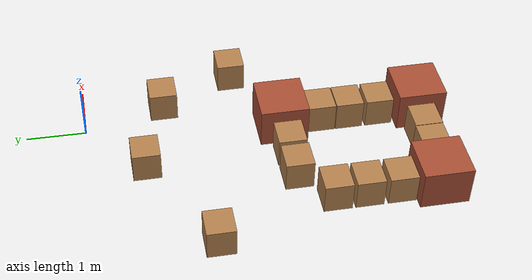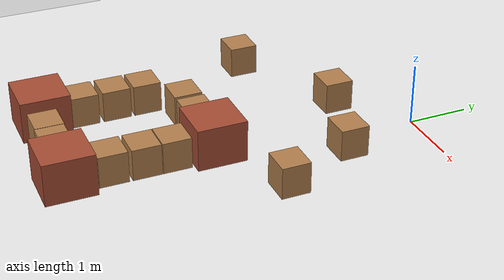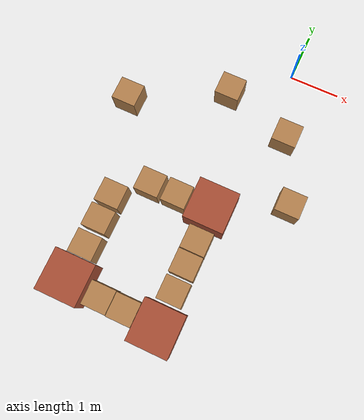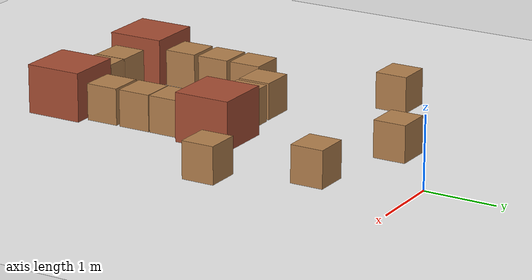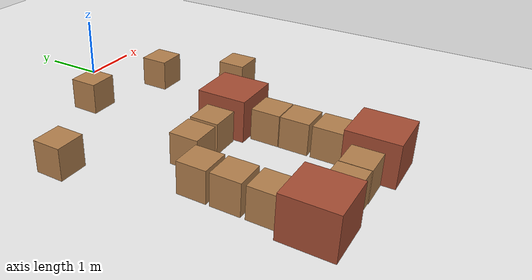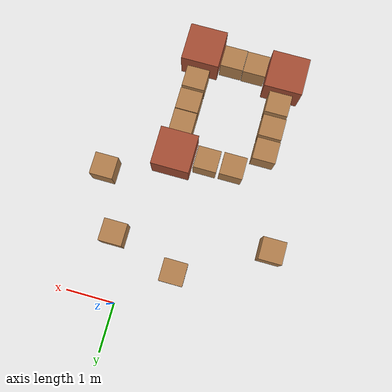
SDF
<sdf version="1.6">
 <world name="default">
  <light name="sun" type="directional">
   <pose>0 0 10 0 -0 0</pose>
   <diffuse>0.8 0.8 0.8 1</diffuse>
   <specular>0.1 0.1 0.1 1</specular>
   <attenuation>
    <range>1000</range>
    <constant>0.9</constant>
    <linear>0.01</linear>
    <quadratic>0.001</quadratic>
   </attenuation>
   <direction>-0.5 0.5 -1</direction>
  </light>
  <model name="ground_plane">
   <static>1</static>
   <link name="link">
    <collision name="collision">
     <geometry><plane><normal>0 0 1</normal><size>100 100</size></plane></geometry>
     <surface><friction><ode><mu>100</mu><mu2>50</mu2></ode></friction></surface>
    </collision>
    <visual name="visual">
     <cast_shadows>0</cast_shadows>
     <geometry><plane><normal>0 0 1</normal><size>100 100</size></plane></geometry>
     <material>
      <script><uri>file://media/materials/scripts/gazebo.material</uri><name>Gazebo/White</name></script>
     </material>
    </visual>
   </link>
  </model>
  <gravity>0 0 -9.8</gravity>
  <magnetic_field>6e-06 2.3e-05 -4.2e-05</magnetic_field>
  <atmosphere type="adiabatic"/>
  <physics name="default_physics" default="0" type="ode">
   <max_step_size>0.005</max_step_size>
   <real_time_factor>1</real_time_factor>
   <real_time_update_rate>1000</real_time_update_rate>
  </physics>
  <scene><ambient>0.4 0.4 0.4 1</ambient><background>0.7 0.7 0.7 1</background><shadows>1</shadows></scene>
  <spherical_coordinates>
   <surface_model>EARTH_WGS84</surface_model>
   <latitude_deg>0</latitude_deg>
   <longitude_deg>0</longitude_deg>
   <elevation>0</elevation>
   <heading_deg>0</heading_deg>
  </spherical_coordinates>
  <model name="HeavyBox_2">
   <link name="link">
    <inertial>
     <mass>2</mass>
     <inertia>
      <ixx>0.0402452</ixx>
      <ixy>0</ixy>
      <ixz>0</ixz>
      <iyy>0.0399236</iyy>
      <iyz>0</iyz>
      <izz>0.0461707</izz>
     </inertia>
    </inertial>
    <visual name="visual">
     <geometry><box><size>0.79482 0.800386 0.684447</size></box></geometry>
     <material>
      <script><name>Gazebo/Bricks</name><uri>file://media/materials/scripts/gazebo.material</uri></script>
      <ambient>0.3 0.3 0.3 1</ambient>
      <diffuse>0.7 0.7 0.7 1</diffuse>
      <specular>0.01 0.01 0.01 1</specular>
      <emissive>0 0 0 1</emissive>
     </material>
    </visual>
    <collision name="collision">
     <geometry><box><size>0.79482 0.800386 0.684447</size></box></geometry>
     <surface>
      <friction>
       <ode><mu>1</mu><mu2>1</mu2><fdir1>0 0 0</fdir1><slip1>0</slip1><slip2>0</slip2></ode>
       <torsional>
        <coefficient>1</coefficient>
        <patch_radius>0</patch_radius>
        <surface_radius>0</surface_radius>
        <use_patch_radius>1</use_patch_radius>
        <ode><slip>0</slip></ode>
       </torsional>
      </friction>
      <bounce><restitution_coefficient>0</restitution_coefficient><threshold>1e+06</threshold></bounce>
      <contact>
       <collide_without_contact>0</collide_without_contact>
       <collide_without_contact_bitmask>1</collide_without_contact_bitmask>
       <collide_bitmask>1</collide_bitmask>
       <ode>
        <soft_cfm>0</soft_cfm>
        <soft_erp>0.2</soft_erp>
        <kp>1e+13</kp>
        <kd>1</kd>
        <max_vel>0.01</max_vel>
        <min_depth>0</min_depth>
       </ode>
       <bullet>
        <split_impulse>1</split_impulse>
        <split_impulse_penetration_threshold>-0.01</split_impulse_penetration_threshold>
        <soft_cfm>0</soft_cfm>
        <soft_erp>0.2</soft_erp>
        <kp>1e+13</kp>
        <kd>1</kd>
       </bullet>
      </contact>
     </surface>
    </collision>
   </link>
   <static>0</static>
   <pose>-2.17237 -5.47315 0.342224 0 -1e-06 -1e-06</pose>
  </model>
  <model name="Box_0">
   <link name="link">
    <inertial>
     <mass>0.01</mass>
     <inertia>
      <ixx>0.00455697</ixx>
      <ixy>0</ixy>
      <ixz>0</ixz>
      <iyy>0.00475558</iyy>
      <iyz>0</iyz>
      <izz>0.00426137</izz>
     </inertia>
    </inertial>
    <visual name="visual">
     <geometry><box><size>0.483208 0.461193 0.514245</size></box></geometry>
     <material>
      <script><name>Gazebo/WoodFloor</name><uri>file://media/materials/scripts/gazebo.material</uri></script>
      <ambient>0.3 0.3 0.3 1</ambient>
      <diffuse>0.7 0.7 0.7 1</diffuse>
      <specular>0.01 0.01 0.01 1</specular>
      <emissive>0 0 0 1</emissive>
     </material>
    </visual>
    <collision name="collision">
     <geometry><box><size>0.483208 0.461193 0.514245</size></box></geometry>
     <surface>
      <friction>
       <ode><mu>1</mu><mu2>1</mu2><fdir1>0 0 0</fdir1><slip1>0</slip1><slip2>0</slip2></ode>
       <torsional>
        <coefficient>1</coefficient>
        <patch_radius>0</patch_radius>
        <surface_radius>0</surface_radius>
        <use_patch_radius>1</use_patch_radius>
        <ode><slip>0</slip></ode>
       </torsional>
      </friction>
      <bounce><restitution_coefficient>0</restitution_coefficient><threshold>1e+06</threshold></bounce>
      <contact>
       <collide_without_contact>0</collide_without_contact>
       <collide_without_contact_bitmask>1</collide_without_contact_bitmask>
       <collide_bitmask>1</collide_bitmask>
       <ode>
        <soft_cfm>0</soft_cfm>
        <soft_erp>0.2</soft_erp>
        <kp>1e+13</kp>
        <kd>1</kd>
        <max_vel>0.01</max_vel>
        <min_depth>0</min_depth>
       </ode>
       <bullet>
        <split_impulse>1</split_impulse>
        <split_impulse_penetration_threshold>-0.01</split_impulse_penetration_threshold>
        <soft_cfm>0</soft_cfm>
        <soft_erp>0.2</soft_erp>
        <kp>1e+13</kp>
        <kd>1</kd>
       </bullet>
      </contact>
     </surface>
    </collision>
   </link>
   <static>0</static>
   <pose>-2.16582 -4.82716 0.257122 0 -0 0</pose>
  </model>
  <model name="Box_1">
   <link name="link">
    <inertial>
     <mass>0.01</mass>
     <inertia>
      <ixx>0.00455697</ixx>
      <ixy>0</ixy>
      <ixz>0</ixz>
      <iyy>0.00475558</iyy>
      <iyz>0</iyz>
      <izz>0.00426137</izz>
     </inertia>
    </inertial>
    <visual name="visual">
     <geometry><box><size>0.483208 0.461193 0.514245</size></box></geometry>
     <material>
      <script><name>Gazebo/WoodFloor</name><uri>file://media/materials/scripts/gazebo.material</uri></script>
      <ambient>0.3 0.3 0.3 1</ambient>
      <diffuse>0.7 0.7 0.7 1</diffuse>
      <specular>0.01 0.01 0.01 1</specular>
      <emissive>0 0 0 1</emissive>
     </material>
    </visual>
    <collision name="collision">
     <geometry><box><size>0.483208 0.461193 0.514245</size></box></geometry>
     <surface>
      <friction>
       <ode><mu>1</mu><mu2>1</mu2><fdir1>0 0 0</fdir1><slip1>0</slip1><slip2>0</slip2></ode>
       <torsional>
        <coefficient>1</coefficient>
        <patch_radius>0</patch_radius>
        <surface_radius>0</surface_radius>
        <use_patch_radius>1</use_patch_radius>
        <ode><slip>0</slip></ode>
       </torsional>
      </friction>
      <bounce><restitution_coefficient>0</restitution_coefficient><threshold>1e+06</threshold></bounce>
      <contact>
       <collide_without_contact>0</collide_without_contact>
       <collide_without_contact_bitmask>1</collide_without_contact_bitmask>
       <collide_bitmask>1</collide_bitmask>
       <ode>
        <soft_cfm>0</soft_cfm>
        <soft_erp>0.2</soft_erp>
        <kp>1e+13</kp>
        <kd>1</kd>
        <max_vel>0.01</max_vel>
        <min_depth>0</min_depth>
       </ode>
       <bullet>
        <split_impulse>1</split_impulse>
        <split_impulse_penetration_threshold>-0.01</split_impulse_penetration_threshold>
        <soft_cfm>0</soft_cfm>
        <soft_erp>0.2</soft_erp>
        <kp>1e+13</kp>
        <kd>1</kd>
       </bullet>
      </contact>
     </surface>
    </collision>
   </link>
   <static>0</static>
   <pose>-2.16483 -4.29877 0.257122 0 -0 0</pose>
  </model>
  <model name="Box_2">
   <link name="link">
    <inertial>
     <mass>0.01</mass>
     <inertia>
      <ixx>0.00455697</ixx>
      <ixy>0</ixy>
      <ixz>0</ixz>
      <iyy>0.00475558</iyy>
      <iyz>0</iyz>
      <izz>0.00426137</izz>
     </inertia>
    </inertial>
    <visual name="visual">
     <geometry><box><size>0.483208 0.461193 0.514245</size></box></geometry>
     <material>
      <script><name>Gazebo/WoodFloor</name><uri>file://media/materials/scripts/gazebo.material</uri></script>
      <ambient>0.3 0.3 0.3 1</ambient>
      <diffuse>0.7 0.7 0.7 1</diffuse>
      <specular>0.01 0.01 0.01 1</specular>
      <emissive>0 0 0 1</emissive>
     </material>
    </visual>
    <collision name="collision">
     <geometry><box><size>0.483208 0.461193 0.514245</size></box></geometry>
     <surface>
      <friction>
       <ode><mu>1</mu><mu2>1</mu2><fdir1>0 0 0</fdir1><slip1>0</slip1><slip2>0</slip2></ode>
       <torsional>
        <coefficient>1</coefficient>
        <patch_radius>0</patch_radius>
        <surface_radius>0</surface_radius>
        <use_patch_radius>1</use_patch_radius>
        <ode><slip>0</slip></ode>
       </torsional>
      </friction>
      <bounce><restitution_coefficient>0</restitution_coefficient><threshold>1e+06</threshold></bounce>
      <contact>
       <collide_without_contact>0</collide_without_contact>
       <collide_without_contact_bitmask>1</collide_without_contact_bitmask>
       <collide_bitmask>1</collide_bitmask>
       <ode>
        <soft_cfm>0</soft_cfm>
        <soft_erp>0.2</soft_erp>
        <kp>1e+13</kp>
        <kd>1</kd>
        <max_vel>0.01</max_vel>
        <min_depth>0</min_depth>
       </ode>
       <bullet>
        <split_impulse>1</split_impulse>
        <split_impulse_penetration_threshold>-0.01</split_impulse_penetration_threshold>
        <soft_cfm>0</soft_cfm>
        <soft_erp>0.2</soft_erp>
        <kp>1e+13</kp>
        <kd>1</kd>
       </bullet>
      </contact>
     </surface>
    </collision>
   </link>
   <static>0</static>
   <pose>-2.1639 -3.78542 0.257122 0 -0 0</pose>
  </model>
  <model name="Box_4">
   <link name="link">
    <inertial>
     <mass>0.01</mass>
     <inertia>
      <ixx>0.00455697</ixx>
      <ixy>0</ixy>
      <ixz>0</ixz>
      <iyy>0.00475558</iyy>
      <iyz>0</iyz>
      <izz>0.00426137</izz>
     </inertia>
    </inertial>
    <visual name="visual">
     <geometry><box><size>0.483208 0.461193 0.514245</size></box></geometry>
     <material>
      <script><name>Gazebo/WoodFloor</name><uri>file://media/materials/scripts/gazebo.material</uri></script>
      <ambient>0.3 0.3 0.3 1</ambient>
      <diffuse>0.7 0.7 0.7 1</diffuse>
      <specular>0.01 0.01 0.01 1</specular>
      <emissive>0 0 0 1</emissive>
     </material>
    </visual>
    <collision name="collision">
     <geometry><box><size>0.483208 0.461193 0.514245</size></box></geometry>
     <surface>
      <friction>
       <ode><mu>1</mu><mu2>1</mu2><fdir1>0 0 0</fdir1><slip1>0</slip1><slip2>0</slip2></ode>
       <torsional>
        <coefficient>1</coefficient>
        <patch_radius>0</patch_radius>
        <surface_radius>0</surface_radius>
        <use_patch_radius>1</use_patch_radius>
        <ode><slip>0</slip></ode>
       </torsional>
      </friction>
      <bounce><restitution_coefficient>0</restitution_coefficient><threshold>1e+06</threshold></bounce>
      <contact>
       <collide_without_contact>0</collide_without_contact>
       <collide_without_contact_bitmask>1</collide_without_contact_bitmask>
       <collide_bitmask>1</collide_bitmask>
       <ode>
        <soft_cfm>0</soft_cfm>
        <soft_erp>0.2</soft_erp>
        <kp>1e+13</kp>
        <kd>1</kd>
        <max_vel>0.01</max_vel>
        <min_depth>0</min_depth>
       </ode>
       <bullet>
        <split_impulse>1</split_impulse>
        <split_impulse_penetration_threshold>-0.01</split_impulse_penetration_threshold>
        <soft_cfm>0</soft_cfm>
        <soft_erp>0.2</soft_erp>
        <kp>1e+13</kp>
        <kd>1</kd>
       </bullet>
      </contact>
     </surface>
    </collision>
   </link>
   <static>0</static>
   <pose>-1.51364 -5.55277 0.257122 0 -0 0</pose>
  </model>
  <model name="Box_5">
   <link name="link">
    <inertial>
     <mass>0.01</mass>
     <inertia>
      <ixx>0.00455697</ixx>
      <ixy>0</ixy>
      <ixz>0</ixz>
      <iyy>0.00475558</iyy>
      <iyz>0</iyz>
      <izz>0.00426137</izz>
     </inertia>
    </inertial>
    <visual name="visual">
     <geometry><box><size>0.483208 0.461193 0.514245</size></box></geometry>
     <material>
      <script><name>Gazebo/WoodFloor</name><uri>file://media/materials/scripts/gazebo.material</uri></script>
      <ambient>0.3 0.3 0.3 1</ambient>
      <diffuse>0.7 0.7 0.7 1</diffuse>
      <specular>0.01 0.01 0.01 1</specular>
      <emissive>0 0 0 1</emissive>
     </material>
    </visual>
    <collision name="collision">
     <geometry><box><size>0.483208 0.461193 0.514245</size></box></geometry>
     <surface>
      <friction>
       <ode><mu>1</mu><mu2>1</mu2><fdir1>0 0 0</fdir1><slip1>0</slip1><slip2>0</slip2></ode>
       <torsional>
        <coefficient>1</coefficient>
        <patch_radius>0</patch_radius>
        <surface_radius>0</surface_radius>
        <use_patch_radius>1</use_patch_radius>
        <ode><slip>0</slip></ode>
       </torsional>
      </friction>
      <bounce><restitution_coefficient>0</restitution_coefficient><threshold>1e+06</threshold></bounce>
      <contact>
       <collide_without_contact>0</collide_without_contact>
       <collide_without_contact_bitmask>1</collide_without_contact_bitmask>
       <collide_bitmask>1</collide_bitmask>
       <ode>
        <soft_cfm>0</soft_cfm>
        <soft_erp>0.2</soft_erp>
        <kp>1e+13</kp>
        <kd>1</kd>
        <max_vel>0.01</max_vel>
        <min_depth>0</min_depth>
       </ode>
       <bullet>
        <split_impulse>1</split_impulse>
        <split_impulse_penetration_threshold>-0.01</split_impulse_penetration_threshold>
        <soft_cfm>0</soft_cfm>
        <soft_erp>0.2</soft_erp>
        <kp>1e+13</kp>
        <kd>1</kd>
       </bullet>
      </contact>
     </surface>
    </collision>
   </link>
   <static>0</static>
   <pose>-1.02223 -5.5618 0.257122 0 -0 0</pose>
  </model>
  <model name="HeavyBox_3">
   <link name="link">
    <inertial>
     <mass>2</mass>
     <inertia>
      <ixx>0.0402452</ixx>
      <ixy>0</ixy>
      <ixz>0</ixz>
      <iyy>0.0399236</iyy>
      <iyz>0</iyz>
      <izz>0.0461707</izz>
     </inertia>
    </inertial>
    <visual name="visual">
     <geometry><box><size>0.79482 0.800386 0.684447</size></box></geometry>
     <material>
      <script><name>Gazebo/Bricks</name><uri>file://media/materials/scripts/gazebo.material</uri></script>
      <ambient>0.3 0.3 0.3 1</ambient>
      <diffuse>0.7 0.7 0.7 1</diffuse>
      <specular>0.01 0.01 0.01 1</specular>
      <emissive>0 0 0 1</emissive>
     </material>
    </visual>
    <collision name="collision">
     <geometry><box><size>0.79482 0.800386 0.684447</size></box></geometry>
     <surface>
      <friction>
       <ode><mu>1</mu><mu2>1</mu2><fdir1>0 0 0</fdir1><slip1>0</slip1><slip2>0</slip2></ode>
       <torsional>
        <coefficient>1</coefficient>
        <patch_radius>0</patch_radius>
        <surface_radius>0</surface_radius>
        <use_patch_radius>1</use_patch_radius>
        <ode><slip>0</slip></ode>
       </torsional>
      </friction>
      <bounce><restitution_coefficient>0</restitution_coefficient><threshold>1e+06</threshold></bounce>
      <contact>
       <collide_without_contact>0</collide_without_contact>
       <collide_without_contact_bitmask>1</collide_without_contact_bitmask>
       <collide_bitmask>1</collide_bitmask>
       <ode>
        <soft_cfm>0</soft_cfm>
        <soft_erp>0.2</soft_erp>
        <kp>1e+13</kp>
        <kd>1</kd>
        <max_vel>0.01</max_vel>
        <min_depth>0</min_depth>
       </ode>
       <bullet>
        <split_impulse>1</split_impulse>
        <split_impulse_penetration_threshold>-0.01</split_impulse_penetration_threshold>
        <soft_cfm>0</soft_cfm>
        <soft_erp>0.2</soft_erp>
        <kp>1e+13</kp>
        <kd>1</kd>
       </bullet>
      </contact>
     </surface>
    </collision>
   </link>
   <static>0</static>
   <pose>-0.358018 -5.59628 0.342224 0 -0 2.3e-05</pose>
  </model>
  <model name="Box_6">
   <link name="link">
    <inertial>
     <mass>0.01</mass>
     <inertia>
      <ixx>0.00455697</ixx>
      <ixy>0</ixy>
      <ixz>0</ixz>
      <iyy>0.00475558</iyy>
      <iyz>0</iyz>
      <izz>0.00426137</izz>
     </inertia>
    </inertial>
    <visual name="visual">
     <geometry><box><size>0.483208 0.461193 0.514245</size></box></geometry>
     <material>
      <script><name>Gazebo/WoodFloor</name><uri>file://media/materials/scripts/gazebo.material</uri></script>
      <ambient>0.3 0.3 0.3 1</ambient>
      <diffuse>0.7 0.7 0.7 1</diffuse>
      <specular>0.01 0.01 0.01 1</specular>
      <emissive>0 0 0 1</emissive>
     </material>
    </visual>
    <collision name="collision">
     <geometry><box><size>0.483208 0.461193 0.514245</size></box></geometry>
     <surface>
      <friction>
       <ode><mu>1</mu><mu2>1</mu2><fdir1>0 0 0</fdir1><slip1>0</slip1><slip2>0</slip2></ode>
       <torsional>
        <coefficient>1</coefficient>
        <patch_radius>0</patch_radius>
        <surface_radius>0</surface_radius>
        <use_patch_radius>1</use_patch_radius>
        <ode><slip>0</slip></ode>
       </torsional>
      </friction>
      <bounce><restitution_coefficient>0</restitution_coefficient><threshold>1e+06</threshold></bounce>
      <contact>
       <collide_without_contact>0</collide_without_contact>
       <collide_without_contact_bitmask>1</collide_without_contact_bitmask>
       <collide_bitmask>1</collide_bitmask>
       <ode>
        <soft_cfm>0</soft_cfm>
        <soft_erp>0.2</soft_erp>
        <kp>1e+13</kp>
        <kd>1</kd>
        <max_vel>0.01</max_vel>
        <min_depth>0</min_depth>
       </ode>
       <bullet>
        <split_impulse>1</split_impulse>
        <split_impulse_penetration_threshold>-0.01</split_impulse_penetration_threshold>
        <soft_cfm>0</soft_cfm>
        <soft_erp>0.2</soft_erp>
        <kp>1e+13</kp>
        <kd>1</kd>
       </bullet>
      </contact>
     </surface>
    </collision>
   </link>
   <static>0</static>
   <pose>-0.356508 -4.91552 0.257122 0 -0 0</pose>
  </model>
  <model name="Box_7">
   <link name="link">
    <inertial>
     <mass>0.01</mass>
     <inertia>
      <ixx>0.00455697</ixx>
      <ixy>0</ixy>
      <ixz>0</ixz>
      <iyy>0.00475558</iyy>
      <iyz>0</iyz>
      <izz>0.00426137</izz>
     </inertia>
    </inertial>
    <visual name="visual">
     <geometry><box><size>0.483208 0.461193 0.514245</size></box></geometry>
     <material>
      <script><name>Gazebo/WoodFloor</name><uri>file://media/materials/scripts/gazebo.material</uri></script>
      <ambient>0.3 0.3 0.3 1</ambient>
      <diffuse>0.7 0.7 0.7 1</diffuse>
      <specular>0.01 0.01 0.01 1</specular>
      <emissive>0 0 0 1</emissive>
     </material>
    </visual>
    <collision name="collision">
     <geometry><box><size>0.483208 0.461193 0.514245</size></box></geometry>
     <surface>
      <friction>
       <ode><mu>1</mu><mu2>1</mu2><fdir1>0 0 0</fdir1><slip1>0</slip1><slip2>0</slip2></ode>
       <torsional>
        <coefficient>1</coefficient>
        <patch_radius>0</patch_radius>
        <surface_radius>0</surface_radius>
        <use_patch_radius>1</use_patch_radius>
        <ode><slip>0</slip></ode>
       </torsional>
      </friction>
      <bounce><restitution_coefficient>0</restitution_coefficient><threshold>1e+06</threshold></bounce>
      <contact>
       <collide_without_contact>0</collide_without_contact>
       <collide_without_contact_bitmask>1</collide_without_contact_bitmask>
       <collide_bitmask>1</collide_bitmask>
       <ode>
        <soft_cfm>0</soft_cfm>
        <soft_erp>0.2</soft_erp>
        <kp>1e+13</kp>
        <kd>1</kd>
        <max_vel>0.01</max_vel>
        <min_depth>0</min_depth>
       </ode>
       <bullet>
        <split_impulse>1</split_impulse>
        <split_impulse_penetration_threshold>-0.01</split_impulse_penetration_threshold>
        <soft_cfm>0</soft_cfm>
        <soft_erp>0.2</soft_erp>
        <kp>1e+13</kp>
        <kd>1</kd>
       </bullet>
      </contact>
     </surface>
    </collision>
   </link>
   <static>0</static>
   <pose>-0.355355 -4.4028 0.257122 0 -0 0</pose>
  </model>
  <model name="Box_8">
   <link name="link">
    <inertial>
     <mass>0.01</mass>
     <inertia>
      <ixx>0.00455697</ixx>
      <ixy>0</ixy>
      <ixz>0</ixz>
      <iyy>0.00475558</iyy>
      <iyz>0</iyz>
      <izz>0.00426137</izz>
     </inertia>
    </inertial>
    <visual name="visual">
     <geometry><box><size>0.483208 0.461193 0.514245</size></box></geometry>
     <material>
      <script><name>Gazebo/WoodFloor</name><uri>file://media/materials/scripts/gazebo.material</uri></script>
      <ambient>0.3 0.3 0.3 1</ambient>
      <diffuse>0.7 0.7 0.7 1</diffuse>
      <specular>0.01 0.01 0.01 1</specular>
      <emissive>0 0 0 1</emissive>
     </material>
    </visual>
    <collision name="collision">
     <geometry><box><size>0.483208 0.461193 0.514245</size></box></geometry>
     <surface>
      <friction>
       <ode><mu>1</mu><mu2>1</mu2><fdir1>0 0 0</fdir1><slip1>0</slip1><slip2>0</slip2></ode>
       <torsional>
        <coefficient>1</coefficient>
        <patch_radius>0</patch_radius>
        <surface_radius>0</surface_radius>
        <use_patch_radius>1</use_patch_radius>
        <ode><slip>0</slip></ode>
       </torsional>
      </friction>
      <bounce><restitution_coefficient>0</restitution_coefficient><threshold>1e+06</threshold></bounce>
      <contact>
       <collide_without_contact>0</collide_without_contact>
       <collide_without_contact_bitmask>1</collide_without_contact_bitmask>
       <collide_bitmask>1</collide_bitmask>
       <ode>
        <soft_cfm>0</soft_cfm>
        <soft_erp>0.2</soft_erp>
        <kp>1e+13</kp>
        <kd>1</kd>
        <max_vel>0.01</max_vel>
        <min_depth>0</min_depth>
       </ode>
       <bullet>
        <split_impulse>1</split_impulse>
        <split_impulse_penetration_threshold>-0.01</split_impulse_penetration_threshold>
        <soft_cfm>0</soft_cfm>
        <soft_erp>0.2</soft_erp>
        <kp>1e+13</kp>
        <kd>1</kd>
       </bullet>
      </contact>
     </surface>
    </collision>
   </link>
   <static>0</static>
   <pose>-0.354228 -3.92825 0.257122 0 -0 0</pose>
  </model>
  <model name="HeavyBox_4">
   <link name="link">
    <inertial>
     <mass>2</mass>
     <inertia>
      <ixx>0.0402452</ixx>
      <ixy>0</ixy>
      <ixz>0</ixz>
      <iyy>0.0399236</iyy>
      <iyz>0</iyz>
      <izz>0.0461707</izz>
     </inertia>
    </inertial>
    <visual name="visual">
     <geometry><box><size>0.79482 0.800386 0.684447</size></box></geometry>
     <material>
      <script><name>Gazebo/Bricks</name><uri>file://media/materials/scripts/gazebo.material</uri></script>
      <ambient>0.3 0.3 0.3 1</ambient>
      <diffuse>0.7 0.7 0.7 1</diffuse>
      <specular>0.01 0.01 0.01 1</specular>
      <emissive>0 0 0 1</emissive>
     </material>
    </visual>
    <collision name="collision">
     <geometry><box><size>0.79482 0.800386 0.684447</size></box></geometry>
     <surface>
      <friction>
       <ode><mu>1</mu><mu2>1</mu2><fdir1>0 0 0</fdir1><slip1>0</slip1><slip2>0</slip2></ode>
       <torsional>
        <coefficient>1</coefficient>
        <patch_radius>0</patch_radius>
        <surface_radius>0</surface_radius>
        <use_patch_radius>1</use_patch_radius>
        <ode><slip>0</slip></ode>
       </torsional>
      </friction>
      <bounce><restitution_coefficient>0</restitution_coefficient><threshold>1e+06</threshold></bounce>
      <contact>
       <collide_without_contact>0</collide_without_contact>
       <collide_without_contact_bitmask>1</collide_without_contact_bitmask>
       <collide_bitmask>1</collide_bitmask>
       <ode>
        <soft_cfm>0</soft_cfm>
        <soft_erp>0.2</soft_erp>
        <kp>1e+13</kp>
        <kd>1</kd>
        <max_vel>0.01</max_vel>
        <min_depth>0</min_depth>
       </ode>
       <bullet>
        <split_impulse>1</split_impulse>
        <split_impulse_penetration_threshold>-0.01</split_impulse_penetration_threshold>
        <soft_cfm>0</soft_cfm>
        <soft_erp>0.2</soft_erp>
        <kp>1e+13</kp>
        <kd>1</kd>
       </bullet>
      </contact>
     </surface>
    </collision>
   </link>
   <static>0</static>
   <pose>-0.369609 -3.25924 0.342224 0 -0 2.3e-05</pose>
  </model>
  <model name="Box_9">
   <link name="link">
    <inertial>
     <mass>0.01</mass>
     <inertia>
      <ixx>0.00455697</ixx>
      <ixy>0</ixy>
      <ixz>0</ixz>
      <iyy>0.00475558</iyy>
      <iyz>0</iyz>
      <izz>0.00426137</izz>
     </inertia>
    </inertial>
    <visual name="visual">
     <geometry><box><size>0.483208 0.461193 0.514245</size></box></geometry>
     <material>
      <script><name>Gazebo/WoodFloor</name><uri>file://media/materials/scripts/gazebo.material</uri></script>
      <ambient>0.3 0.3 0.3 1</ambient>
      <diffuse>0.7 0.7 0.7 1</diffuse>
      <specular>0.01 0.01 0.01 1</specular>
      <emissive>0 0 0 1</emissive>
     </material>
    </visual>
    <collision name="collision">
     <geometry><box><size>0.483208 0.461193 0.514245</size></box></geometry>
     <surface>
      <friction>
       <ode><mu>1</mu><mu2>1</mu2><fdir1>0 0 0</fdir1><slip1>0</slip1><slip2>0</slip2></ode>
       <torsional>
        <coefficient>1</coefficient>
        <patch_radius>0</patch_radius>
        <surface_radius>0</surface_radius>
        <use_patch_radius>1</use_patch_radius>
        <ode><slip>0</slip></ode>
       </torsional>
      </friction>
      <bounce><restitution_coefficient>0</restitution_coefficient><threshold>1e+06</threshold></bounce>
      <contact>
       <collide_without_contact>0</collide_without_contact>
       <collide_without_contact_bitmask>1</collide_without_contact_bitmask>
       <collide_bitmask>1</collide_bitmask>
       <ode>
        <soft_cfm>0</soft_cfm>
        <soft_erp>0.2</soft_erp>
        <kp>1e+13</kp>
        <kd>1</kd>
        <max_vel>0.01</max_vel>
        <min_depth>0</min_depth>
       </ode>
       <bullet>
        <split_impulse>1</split_impulse>
        <split_impulse_penetration_threshold>-0.01</split_impulse_penetration_threshold>
        <soft_cfm>0</soft_cfm>
        <soft_erp>0.2</soft_erp>
        <kp>1e+13</kp>
        <kd>1</kd>
       </bullet>
      </contact>
     </surface>
    </collision>
   </link>
   <static>0</static>
   <pose>-1.59819 -3.29014 0.257122 0 -0 0</pose>
  </model>
  <model name="Box_10">
   <link name="link">
    <inertial>
     <mass>0.01</mass>
     <inertia>
      <ixx>0.00455697</ixx>
      <ixy>0</ixy>
      <ixz>0</ixz>
      <iyy>0.00475558</iyy>
      <iyz>0</iyz>
      <izz>0.00426137</izz>
     </inertia>
    </inertial>
    <visual name="visual">
     <geometry><box><size>0.483208 0.461193 0.514245</size></box></geometry>
     <material>
      <script><name>Gazebo/WoodFloor</name><uri>file://media/materials/scripts/gazebo.material</uri></script>
      <ambient>0.3 0.3 0.3 1</ambient>
      <diffuse>0.7 0.7 0.7 1</diffuse>
      <specular>0.01 0.01 0.01 1</specular>
      <emissive>0 0 0 1</emissive>
     </material>
    </visual>
    <collision name="collision">
     <geometry><box><size>0.483208 0.461193 0.514245</size></box></geometry>
     <surface>
      <friction>
       <ode><mu>1</mu><mu2>1</mu2><fdir1>0 0 0</fdir1><slip1>0</slip1><slip2>0</slip2></ode>
       <torsional>
        <coefficient>1</coefficient>
        <patch_radius>0</patch_radius>
        <surface_radius>0</surface_radius>
        <use_patch_radius>1</use_patch_radius>
        <ode><slip>0</slip></ode>
       </torsional>
      </friction>
      <bounce><restitution_coefficient>0</restitution_coefficient><threshold>1e+06</threshold></bounce>
      <contact>
       <collide_without_contact>0</collide_without_contact>
       <collide_without_contact_bitmask>1</collide_without_contact_bitmask>
       <collide_bitmask>1</collide_bitmask>
       <ode>
        <soft_cfm>0</soft_cfm>
        <soft_erp>0.2</soft_erp>
        <kp>1e+13</kp>
        <kd>1</kd>
        <max_vel>0.01</max_vel>
        <min_depth>0</min_depth>
       </ode>
       <bullet>
        <split_impulse>1</split_impulse>
        <split_impulse_penetration_threshold>-0.01</split_impulse_penetration_threshold>
        <soft_cfm>0</soft_cfm>
        <soft_erp>0.2</soft_erp>
        <kp>1e+13</kp>
        <kd>1</kd>
       </bullet>
      </contact>
     </surface>
    </collision>
   </link>
   <static>0</static>
   <pose>-1.05107 -3.28293 0.257122 0 -0 0</pose>
  </model>
  <model name="Box_11">
   <link name="link">
    <inertial>
     <mass>0.01</mass>
     <inertia>
      <ixx>0.00455697</ixx>
      <ixy>0</ixy>
      <ixz>0</ixz>
      <iyy>0.00475558</iyy>
      <iyz>0</iyz>
      <izz>0.00426137</izz>
     </inertia>
    </inertial>
    <visual name="visual">
     <geometry><box><size>0.483208 0.461193 0.514245</size></box></geometry>
     <material>
      <script><name>Gazebo/WoodFloor</name><uri>file://media/materials/scripts/gazebo.material</uri></script>
      <ambient>0.3 0.3 0.3 1</ambient>
      <diffuse>0.7 0.7 0.7 1</diffuse>
      <specular>0.01 0.01 0.01 1</specular>
      <emissive>0 0 0 1</emissive>
     </material>
    </visual>
    <collision name="collision">
     <geometry><box><size>0.483208 0.461193 0.514245</size></box></geometry>
     <surface>
      <friction>
       <ode><mu>1</mu><mu2>1</mu2><fdir1>0 0 0</fdir1><slip1>0</slip1><slip2>0</slip2></ode>
       <torsional>
        <coefficient>1</coefficient>
        <patch_radius>0</patch_radius>
        <surface_radius>0</surface_radius>
        <use_patch_radius>1</use_patch_radius>
        <ode><slip>0</slip></ode>
       </torsional>
      </friction>
      <bounce><restitution_coefficient>0</restitution_coefficient><threshold>1e+06</threshold></bounce>
      <contact>
       <collide_without_contact>0</collide_without_contact>
       <collide_without_contact_bitmask>1</collide_without_contact_bitmask>
       <collide_bitmask>1</collide_bitmask>
       <ode>
        <soft_cfm>0</soft_cfm>
        <soft_erp>0.2</soft_erp>
        <kp>1e+13</kp>
        <kd>1</kd>
        <max_vel>0.01</max_vel>
        <min_depth>0</min_depth>
       </ode>
       <bullet>
        <split_impulse>1</split_impulse>
        <split_impulse_penetration_threshold>-0.01</split_impulse_penetration_threshold>
        <soft_cfm>0</soft_cfm>
        <soft_erp>0.2</soft_erp>
        <kp>1e+13</kp>
        <kd>1</kd>
       </bullet>
      </contact>
     </surface>
    </collision>
   </link>
   <static>0</static>
   <pose>-1.00398 -0.909699 0.257122 0 -0 0</pose>
  </model>
  <model name="Box_12">
   <link name="link">
    <inertial>
     <mass>0.01</mass>
     <inertia>
      <ixx>0.00455697</ixx>
      <ixy>0</ixy>
      <ixz>0</ixz>
      <iyy>0.00475558</iyy>
      <iyz>0</iyz>
      <izz>0.00426137</izz>
     </inertia>
    </inertial>
    <visual name="visual">
     <geometry><box><size>0.483208 0.461193 0.514245</size></box></geometry>
     <material>
      <script><name>Gazebo/WoodFloor</name><uri>file://media/materials/scripts/gazebo.material</uri></script>
      <ambient>0.3 0.3 0.3 1</ambient>
      <diffuse>0.7 0.7 0.7 1</diffuse>
      <specular>0.01 0.01 0.01 1</specular>
      <emissive>0 0 0 1</emissive>
     </material>
    </visual>
    <collision name="collision">
     <geometry><box><size>0.483208 0.461193 0.514245</size></box></geometry>
     <surface>
      <friction>
       <ode><mu>1</mu><mu2>1</mu2><fdir1>0 0 0</fdir1><slip1>0</slip1><slip2>0</slip2></ode>
       <torsional>
        <coefficient>1</coefficient>
        <patch_radius>0</patch_radius>
        <surface_radius>0</surface_radius>
        <use_patch_radius>1</use_patch_radius>
        <ode><slip>0</slip></ode>
       </torsional>
      </friction>
      <bounce><restitution_coefficient>0</restitution_coefficient><threshold>1e+06</threshold></bounce>
      <contact>
       <collide_without_contact>0</collide_without_contact>
       <collide_without_contact_bitmask>1</collide_without_contact_bitmask>
       <collide_bitmask>1</collide_bitmask>
       <ode>
        <soft_cfm>0</soft_cfm>
        <soft_erp>0.2</soft_erp>
        <kp>1e+13</kp>
        <kd>1</kd>
        <max_vel>0.01</max_vel>
        <min_depth>0</min_depth>
       </ode>
       <bullet>
        <split_impulse>1</split_impulse>
        <split_impulse_penetration_threshold>-0.01</split_impulse_penetration_threshold>
        <soft_cfm>0</soft_cfm>
        <soft_erp>0.2</soft_erp>
        <kp>1e+13</kp>
        <kd>1</kd>
       </bullet>
      </contact>
     </surface>
    </collision>
   </link>
   <static>0</static>
   <pose>0.94074 -2.59055 0.257122 0 -0 0</pose>
  </model>
  <model name="Box_13">
   <link name="link">
    <inertial>
     <mass>0.01</mass>
     <inertia>
      <ixx>0.00455697</ixx>
      <ixy>0</ixy>
      <ixz>0</ixz>
      <iyy>0.00475558</iyy>
      <iyz>0</iyz>
      <izz>0.00426137</izz>
     </inertia>
    </inertial>
    <visual name="visual">
     <geometry><box><size>0.483208 0.461193 0.514245</size></box></geometry>
     <material>
      <script><name>Gazebo/WoodFloor</name><uri>file://media/materials/scripts/gazebo.material</uri></script>
      <ambient>0.3 0.3 0.3 1</ambient>
      <diffuse>0.7 0.7 0.7 1</diffuse>
      <specular>0.01 0.01 0.01 1</specular>
      <emissive>0 0 0 1</emissive>
     </material>
    </visual>
    <collision name="collision">
     <geometry><box><size>0.483208 0.461193 0.514245</size></box></geometry>
     <surface>
      <friction>
       <ode><mu>1</mu><mu2>1</mu2><fdir1>0 0 0</fdir1><slip1>0</slip1><slip2>0</slip2></ode>
       <torsional>
        <coefficient>1</coefficient>
        <patch_radius>0</patch_radius>
        <surface_radius>0</surface_radius>
        <use_patch_radius>1</use_patch_radius>
        <ode><slip>0</slip></ode>
       </torsional>
      </friction>
      <bounce><restitution_coefficient>0</restitution_coefficient><threshold>1e+06</threshold></bounce>
      <contact>
       <collide_without_contact>0</collide_without_contact>
       <collide_without_contact_bitmask>1</collide_without_contact_bitmask>
       <collide_bitmask>1</collide_bitmask>
       <ode>
        <soft_cfm>0</soft_cfm>
        <soft_erp>0.2</soft_erp>
        <kp>1e+13</kp>
        <kd>1</kd>
        <max_vel>0.01</max_vel>
        <min_depth>0</min_depth>
       </ode>
       <bullet>
        <split_impulse>1</split_impulse>
        <split_impulse_penetration_threshold>-0.01</split_impulse_penetration_threshold>
        <soft_cfm>0</soft_cfm>
        <soft_erp>0.2</soft_erp>
        <kp>1e+13</kp>
        <kd>1</kd>
       </bullet>
      </contact>
     </surface>
    </collision>
   </link>
   <static>0</static>
   <pose>0.366352 -1.34331 0.257122 0 -0 0</pose>
  </model>
  <model name="Box_14">
   <link name="link">
    <inertial>
     <mass>0.01</mass>
     <inertia>
      <ixx>0.00455697</ixx>
      <ixy>0</ixy>
      <ixz>0</ixz>
      <iyy>0.00475558</iyy>
      <iyz>0</iyz>
      <izz>0.00426137</izz>
     </inertia>
    </inertial>
    <visual name="visual">
     <geometry><box><size>0.483208 0.461193 0.514245</size></box></geometry>
     <material>
      <script><name>Gazebo/WoodFloor</name><uri>file://media/materials/scripts/gazebo.material</uri></script>
      <ambient>0.3 0.3 0.3 1</ambient>
      <diffuse>0.7 0.7 0.7 1</diffuse>
      <specular>0.01 0.01 0.01 1</specular>
      <emissive>0 0 0 1</emissive>
     </material>
    </visual>
    <collision name="collision">
     <geometry><box><size>0.483208 0.461193 0.514245</size></box></geometry>
     <surface>
      <friction>
       <ode><mu>1</mu><mu2>1</mu2><fdir1>0 0 0</fdir1><slip1>0</slip1><slip2>0</slip2></ode>
       <torsional>
        <coefficient>1</coefficient>
        <patch_radius>0</patch_radius>
        <surface_radius>0</surface_radius>
        <use_patch_radius>1</use_patch_radius>
        <ode><slip>0</slip></ode>
       </torsional>
      </friction>
      <bounce><restitution_coefficient>0</restitution_coefficient><threshold>1e+06</threshold></bounce>
      <contact>
       <collide_without_contact>0</collide_without_contact>
       <collide_without_contact_bitmask>1</collide_without_contact_bitmask>
       <collide_bitmask>1</collide_bitmask>
       <ode>
        <soft_cfm>0</soft_cfm>
        <soft_erp>0.2</soft_erp>
        <kp>1e+13</kp>
        <kd>1</kd>
        <max_vel>0.01</max_vel>
        <min_depth>0</min_depth>
       </ode>
       <bullet>
        <split_impulse>1</split_impulse>
        <split_impulse_penetration_threshold>-0.01</split_impulse_penetration_threshold>
        <soft_cfm>0</soft_cfm>
        <soft_erp>0.2</soft_erp>
        <kp>1e+13</kp>
        <kd>1</kd>
       </bullet>
      </contact>
     </surface>
    </collision>
   </link>
   <static>0</static>
   <pose>-2.77632 -1.83894 0.257122 0 -0 0</pose>
  </model>
 </world>
</sdf>
